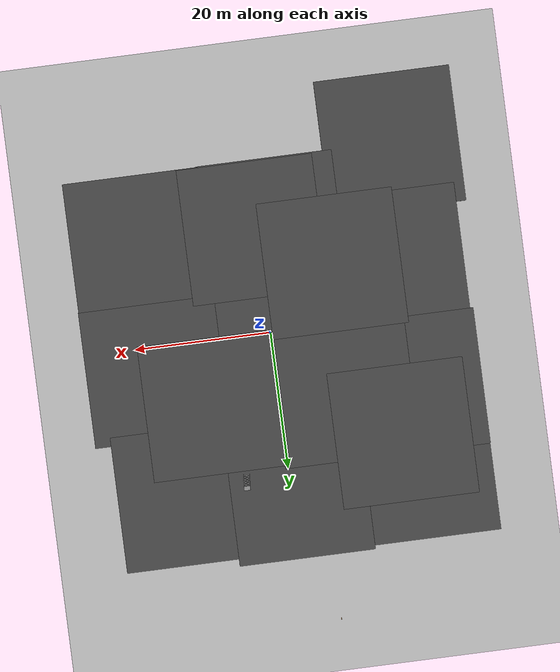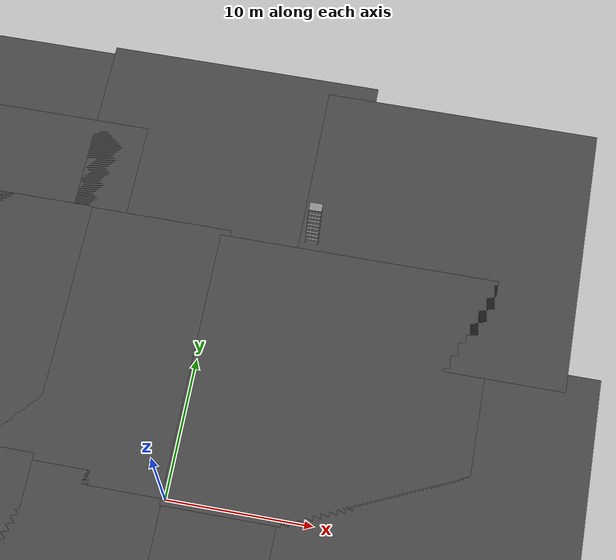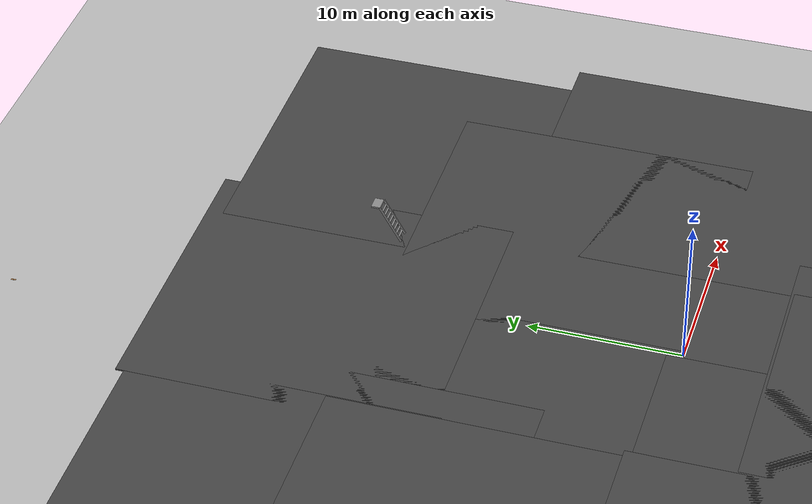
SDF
<sdf version="1.6">
 <world name="default">
  <light name="sun" type="directional">
   <pose>0 0 10 0 -0 0</pose>
   <diffuse>0.8 0.8 0.8 1</diffuse>
   <specular>0.2 0.2 0.2 1</specular>
   <attenuation>
    <range>1000</range>
    <constant>0.9</constant>
    <linear>0.01</linear>
    <quadratic>0.001</quadratic>
   </attenuation>
   <direction>-0.5 0.1 -0.9</direction>
  </light>
  <model name="ground_plane">
   <static>1</static>
   <link name="link">
    <collision name="collision">
     <geometry><plane><normal>0 0 1</normal><size>100 100</size></plane></geometry>
     <surface>
      <contact><collide_bitmask>65535</collide_bitmask></contact>
      <friction><ode><mu>100</mu><mu2>50</mu2></ode></friction>
     </surface>
    </collision>
    <visual name="visual">
     <cast_shadows>0</cast_shadows>
     <geometry><plane><normal>0 0 1</normal><size>100 100</size></plane></geometry>
     <material>
      <script><uri>file://media/materials/scripts/gazebo.material</uri><name>Gazebo/Grey</name></script>
     </material>
    </visual>
   </link>
  </model>
  <gravity>0 0 -9.8</gravity>
  <magnetic_field>6e-06 2.3e-05 -4.2e-05</magnetic_field>
  <atmosphere type="adiabatic"/>
  <physics name="default_physics" default="0" type="ode">
   <max_step_size>0.001</max_step_size>
   <real_time_factor>1</real_time_factor>
   <real_time_update_rate>1000</real_time_update_rate>
  </physics>
  <scene><ambient>0.4 0.4 0.4 1</ambient><background>0.7 0.7 0.7 1</background><shadows>1</shadows></scene>
  <spherical_coordinates>
   <surface_model>EARTH_WGS84</surface_model>
   <latitude_deg>0</latitude_deg>
   <longitude_deg>0</longitude_deg>
   <elevation>0</elevation>
   <heading_deg>0</heading_deg>
  </spherical_coordinates>
  <model name="asphalt_plane">
   <static>1</static>
   <link name="link">
    <collision name="collision"><geometry><box><size>20 20 0.1</size></box></geometry></collision>
    <visual name="visual">
     <cast_shadows>0</cast_shadows>
     <geometry><box><size>20 20 0.1</size></box></geometry>
     <material>
      <script>
       <uri>model://asphalt_plane/materials/scripts</uri>
       <uri>model://asphalt_plane/materials/textures</uri>
       <name>vrc/asphalt</name>
      </script>
     </material>
    </visual>
   </link>
   <pose>-10.2335 -8.95966 0 0 -0 0</pose>
  </model>
  <model name="asphalt_plane_0">
   <static>1</static>
   <link name="link">
    <collision name="collision"><geometry><box><size>20 20 0.1</size></box></geometry></collision>
    <visual name="visual">
     <cast_shadows>0</cast_shadows>
     <geometry><box><size>20 20 0.1</size></box></geometry>
     <material>
      <script>
       <uri>model://asphalt_plane/materials/scripts</uri>
       <uri>model://asphalt_plane/materials/textures</uri>
       <name>vrc/asphalt</name>
      </script>
     </material>
    </visual>
   </link>
   <pose>9.68348 9.56205 0 0 -0 0</pose>
  </model>
  <model name="asphalt_plane_1">
   <static>1</static>
   <link name="link">
    <collision name="collision"><geometry><box><size>20 20 0.1</size></box></geometry></collision>
    <visual name="visual">
     <cast_shadows>0</cast_shadows>
     <geometry><box><size>20 20 0.1</size></box></geometry>
     <material>
      <script>
       <uri>model://asphalt_plane/materials/scripts</uri>
       <uri>model://asphalt_plane/materials/textures</uri>
       <name>vrc/asphalt</name>
      </script>
     </material>
    </visual>
   </link>
   <pose>0.723568 -15.3071 0 0 -0 0</pose>
  </model>
  <model name="asphalt_plane_2">
   <static>1</static>
   <link name="link">
    <collision name="collision"><geometry><box><size>20 20 0.1</size></box></geometry></collision>
    <visual name="visual">
     <cast_shadows>0</cast_shadows>
     <geometry><box><size>20 20 0.1</size></box></geometry>
     <material>
      <script>
       <uri>model://asphalt_plane/materials/scripts</uri>
       <uri>model://asphalt_plane/materials/textures</uri>
       <name>vrc/asphalt</name>
      </script>
     </material>
    </visual>
   </link>
   <pose>-17.3267 16.9851 0 0 -0 0</pose>
  </model>
  <model name="asphalt_plane_0_clone">
   <static>1</static>
   <link name="link">
    <collision name="collision"><geometry><box><size>20 20 0.1</size></box></geometry></collision>
    <visual name="visual">
     <cast_shadows>0</cast_shadows>
     <geometry><box><size>20 20 0.1</size></box></geometry>
     <material>
      <script>
       <uri>model://asphalt_plane/materials/scripts</uri>
       <uri>model://asphalt_plane/materials/textures</uri>
       <name>vrc/asphalt</name>
      </script>
     </material>
    </visual>
   </link>
   <pose>-9.62429 10.0175 0 0 -0 0</pose>
  </model>
  <model name="asphalt_plane_2_clone">
   <static>1</static>
   <link name="link">
    <collision name="collision"><geometry><box><size>20 20 0.1</size></box></geometry></collision>
    <visual name="visual">
     <cast_shadows>0</cast_shadows>
     <geometry><box><size>20 20 0.1</size></box></geometry>
     <material>
      <script>
       <uri>model://asphalt_plane/materials/scripts</uri>
       <uri>model://asphalt_plane/materials/textures</uri>
       <name>vrc/asphalt</name>
      </script>
     </material>
    </visual>
   </link>
   <pose>-19.8492 10.102 0 0 -0 0</pose>
  </model>
  <model name="asphalt_plane_2_clone_0">
   <static>1</static>
   <link name="link">
    <collision name="collision"><geometry><box><size>20 20 0.1</size></box></geometry></collision>
    <visual name="visual">
     <cast_shadows>0</cast_shadows>
     <geometry><box><size>20 20 0.1</size></box></geometry>
     <material>
      <script>
       <uri>model://asphalt_plane/materials/scripts</uri>
       <uri>model://asphalt_plane/materials/textures</uri>
       <name>vrc/asphalt</name>
      </script>
     </material>
    </visual>
   </link>
   <pose>-19.3901 -8.45772 0 0 -0 0</pose>
  </model>
  <model name="asphalt_plane_2_clone_1">
   <static>1</static>
   <link name="link">
    <collision name="collision"><geometry><box><size>20 20 0.1</size></box></geometry></collision>
    <visual name="visual">
     <cast_shadows>0</cast_shadows>
     <geometry><box><size>20 20 0.1</size></box></geometry>
     <material>
      <script>
       <uri>model://asphalt_plane/materials/scripts</uri>
       <uri>model://asphalt_plane/materials/textures</uri>
       <name>vrc/asphalt</name>
      </script>
     </material>
    </visual>
   </link>
   <pose>-1.1834 23.3107 0 0 -0 0</pose>
  </model>
  <model name="asphalt_plane_2_clone_2">
   <static>1</static>
   <link name="link">
    <collision name="collision"><geometry><box><size>20 20 0.1</size></box></geometry></collision>
    <visual name="visual">
     <cast_shadows>0</cast_shadows>
     <geometry><box><size>20 20 0.1</size></box></geometry>
     <material>
      <script>
       <uri>model://asphalt_plane/materials/scripts</uri>
       <uri>model://asphalt_plane/materials/textures</uri>
       <name>vrc/asphalt</name>
      </script>
     </material>
    </visual>
   </link>
   <pose>15.2795 22.2344 0 0 -0 0</pose>
  </model>
  <model name="asphalt_plane_2_clone_3">
   <static>1</static>
   <link name="link">
    <collision name="collision"><geometry><box><size>20 20 0.1</size></box></geometry></collision>
    <visual name="visual">
     <cast_shadows>0</cast_shadows>
     <geometry><box><size>20 20 0.1</size></box></geometry>
     <material>
      <script>
       <uri>model://asphalt_plane/materials/scripts</uri>
       <uri>model://asphalt_plane/materials/textures</uri>
       <name>vrc/asphalt</name>
      </script>
     </material>
    </visual>
   </link>
   <pose>17.5629 3.54139 0 0 -0 0</pose>
  </model>
  <model name="asphalt_plane_2_clone_4">
   <static>1</static>
   <link name="link">
    <collision name="collision"><geometry><box><size>20 20 0.1</size></box></geometry></collision>
    <visual name="visual">
     <cast_shadows>0</cast_shadows>
     <geometry><box><size>20 20 0.1</size></box></geometry>
     <material>
      <script>
       <uri>model://asphalt_plane/materials/scripts</uri>
       <uri>model://asphalt_plane/materials/textures</uri>
       <name>vrc/asphalt</name>
      </script>
     </material>
    </visual>
   </link>
   <pose>17.4862 -15.4052 0 0 -0 0</pose>
  </model>
  <model name="asphalt_plane_1_clone">
   <static>1</static>
   <link name="link">
    <collision name="collision"><geometry><box><size>20 20 0.1</size></box></geometry></collision>
    <visual name="visual">
     <cast_shadows>0</cast_shadows>
     <geometry><box><size>20 20 0.1</size></box></geometry>
     <material>
      <script>
       <uri>model://asphalt_plane/materials/scripts</uri>
       <uri>model://asphalt_plane/materials/textures</uri>
       <name>vrc/asphalt</name>
      </script>
     </material>
    </visual>
   </link>
   <pose>9.02705 -9.99163 0 0 -0 0</pose>
  </model>
  <model name="asphalt_plane_1_clone_0">
   <static>1</static>
   <link name="link">
    <collision name="collision"><geometry><box><size>20 20 0.1</size></box></geometry></collision>
    <visual name="visual">
     <cast_shadows>0</cast_shadows>
     <geometry><box><size>20 20 0.1</size></box></geometry>
     <material>
      <script>
       <uri>model://asphalt_plane/materials/scripts</uri>
       <uri>model://asphalt_plane/materials/textures</uri>
       <name>vrc/asphalt</name>
      </script>
     </material>
    </visual>
   </link>
   <pose>-2.20786 -15.4895 0 0 -0 0</pose>
  </model>
  <model name="asphalt_plane_clone">
   <static>1</static>
   <link name="link">
    <collision name="collision"><geometry><box><size>20 20 0.1</size></box></geometry></collision>
    <visual name="visual">
     <cast_shadows>0</cast_shadows>
     <geometry><box><size>20 20 0.1</size></box></geometry>
     <material>
      <script>
       <uri>model://asphalt_plane/materials/scripts</uri>
       <uri>model://asphalt_plane/materials/textures</uri>
       <name>vrc/asphalt</name>
      </script>
     </material>
    </visual>
   </link>
   <pose>-20.8495 -25.5897 0 0 -0 0</pose>
  </model>
  <model name="asphalt_plane_2_clone_1_clone">
   <static>1</static>
   <link name="link">
    <collision name="collision"><geometry><box><size>20 20 0.1</size></box></geometry></collision>
    <visual name="visual">
     <cast_shadows>0</cast_shadows>
     <geometry><box><size>20 20 0.1</size></box></geometry>
     <material>
      <script>
       <uri>model://asphalt_plane/materials/scripts</uri>
       <uri>model://asphalt_plane/materials/textures</uri>
       <name>vrc/asphalt</name>
      </script>
     </material>
    </visual>
   </link>
   <pose>-19.7761 22.7594 0 0 -0 0</pose>
  </model>
  <model name="ladder_60deg_0rails">
   <static>1</static>
   <link name="step0">
    <pose>0 0.15396 0.266667 0 -0 0</pose>
    <inertial>
     <mass>9.75482</mass>
     <inertia>
      <ixx>0.00957124</ixx>
      <iyy>0.65963</iyy>
      <izz>0.666842</izz>
      <ixy>0</ixy>
      <ixz>0</ixz>
      <iyz>0</iyz>
     </inertia>
    </inertial>
    <collision name="collision"><geometry><box><size>0.9 0.1016 0.0381</size></box></geometry></collision>
    <visual name="visual">
     <geometry><box><size>0.9 0.1016 0.0381</size></box></geometry>
     <material>
      <script><uri>file://media/materials/scripts/gazebo.material</uri><name>Gazebo/Grey</name></script>
     </material>
    </visual>
   </link>
   <link name="step1">
    <pose>0 0.30792 0.533333 0 -0 0</pose>
    <inertial>
     <mass>9.75482</mass>
     <inertia>
      <ixx>0.00957124</ixx>
      <iyy>0.65963</iyy>
      <izz>0.666842</izz>
      <ixy>0</ixy>
      <ixz>0</ixz>
      <iyz>0</iyz>
     </inertia>
    </inertial>
    <collision name="collision"><geometry><box><size>0.9 0.1016 0.0381</size></box></geometry></collision>
    <visual name="visual">
     <geometry><box><size>0.9 0.1016 0.0381</size></box></geometry>
     <material>
      <script><uri>file://media/materials/scripts/gazebo.material</uri><name>Gazebo/Grey</name></script>
     </material>
    </visual>
   </link>
   <link name="step2">
    <pose>0 0.46188 0.8 0 -0 0</pose>
    <inertial>
     <mass>9.75482</mass>
     <inertia>
      <ixx>0.00957124</ixx>
      <iyy>0.65963</iyy>
      <izz>0.666842</izz>
      <ixy>0</ixy>
      <ixz>0</ixz>
      <iyz>0</iyz>
     </inertia>
    </inertial>
    <collision name="collision"><geometry><box><size>0.9 0.1016 0.0381</size></box></geometry></collision>
    <visual name="visual">
     <geometry><box><size>0.9 0.1016 0.0381</size></box></geometry>
     <material>
      <script><uri>file://media/materials/scripts/gazebo.material</uri><name>Gazebo/Grey</name></script>
     </material>
    </visual>
   </link>
   <link name="step3">
    <pose>0 0.61584 1.06667 0 -0 0</pose>
    <inertial>
     <mass>9.75482</mass>
     <inertia>
      <ixx>0.00957124</ixx>
      <iyy>0.65963</iyy>
      <izz>0.666842</izz>
      <ixy>0</ixy>
      <ixz>0</ixz>
      <iyz>0</iyz>
     </inertia>
    </inertial>
    <collision name="collision"><geometry><box><size>0.9 0.1016 0.0381</size></box></geometry></collision>
    <visual name="visual">
     <geometry><box><size>0.9 0.1016 0.0381</size></box></geometry>
     <material>
      <script><uri>file://media/materials/scripts/gazebo.material</uri><name>Gazebo/Grey</name></script>
     </material>
    </visual>
   </link>
   <link name="step4">
    <pose>0 0.7698 1.33333 0 -0 0</pose>
    <inertial>
     <mass>9.75482</mass>
     <inertia>
      <ixx>0.00957124</ixx>
      <iyy>0.65963</iyy>
      <izz>0.666842</izz>
      <ixy>0</ixy>
      <ixz>0</ixz>
      <iyz>0</iyz>
     </inertia>
    </inertial>
    <collision name="collision"><geometry><box><size>0.9 0.1016 0.0381</size></box></geometry></collision>
    <visual name="visual">
     <geometry><box><size>0.9 0.1016 0.0381</size></box></geometry>
     <material>
      <script><uri>file://media/materials/scripts/gazebo.material</uri><name>Gazebo/Grey</name></script>
     </material>
    </visual>
   </link>
   <link name="step5">
    <pose>0 0.92376 1.6 0 -0 0</pose>
    <inertial>
     <mass>9.75482</mass>
     <inertia>
      <ixx>0.00957124</ixx>
      <iyy>0.65963</iyy>
      <izz>0.666842</izz>
      <ixy>0</ixy>
      <ixz>0</ixz>
      <iyz>0</iyz>
     </inertia>
    </inertial>
    <collision name="collision"><geometry><box><size>0.9 0.1016 0.0381</size></box></geometry></collision>
    <visual name="visual">
     <geometry><box><size>0.9 0.1016 0.0381</size></box></geometry>
     <material>
      <script><uri>file://media/materials/scripts/gazebo.material</uri><name>Gazebo/Grey</name></script>
     </material>
    </visual>
   </link>
   <link name="step6">
    <pose>0 1.07772 1.86667 0 -0 0</pose>
    <inertial>
     <mass>9.75482</mass>
     <inertia>
      <ixx>0.00957124</ixx>
      <iyy>0.65963</iyy>
      <izz>0.666842</izz>
      <ixy>0</ixy>
      <ixz>0</ixz>
      <iyz>0</iyz>
     </inertia>
    </inertial>
    <collision name="collision"><geometry><box><size>0.9 0.1016 0.0381</size></box></geometry></collision>
    <visual name="visual">
     <geometry><box><size>0.9 0.1016 0.0381</size></box></geometry>
     <material>
      <script><uri>file://media/materials/scripts/gazebo.material</uri><name>Gazebo/Grey</name></script>
     </material>
    </visual>
   </link>
   <link name="step7">
    <pose>0 1.23168 2.13333 0 -0 0</pose>
    <inertial>
     <mass>9.75482</mass>
     <inertia>
      <ixx>0.00957124</ixx>
      <iyy>0.65963</iyy>
      <izz>0.666842</izz>
      <ixy>0</ixy>
      <ixz>0</ixz>
      <iyz>0</iyz>
     </inertia>
    </inertial>
    <collision name="collision"><geometry><box><size>0.9 0.1016 0.0381</size></box></geometry></collision>
    <visual name="visual">
     <geometry><box><size>0.9 0.1016 0.0381</size></box></geometry>
     <material>
      <script><uri>file://media/materials/scripts/gazebo.material</uri><name>Gazebo/Grey</name></script>
     </material>
    </visual>
   </link>
   <link name="landing">
    <pose>0 1.68564 2.4 0 -0 0</pose>
    <inertial>
     <mass>57.6072</mass>
     <inertia><ixx>1.73518</ixx><iyy>3.89545</iyy><izz>5.6167</izz><ixy>0</ixy><ixz>0</ixz><iyz>0</iyz></inertia>
    </inertial>
    <collision name="collision"><geometry><box><size>0.9 0.6 0.1016</size></box></geometry></collision>
    <visual name="visual">
     <geometry><box><size>0.9 0.6 0.1016</size></box></geometry>
     <material>
      <script><uri>file://media/materials/scripts/gazebo.material</uri><name>Gazebo/Grey</name></script>
     </material>
    </visual>
   </link>
   <link name="left_side_wall">
    <pose>-0.45 0.69282 1.2 1.0472 -0 0</pose>
    <collision name="collision"><geometry><box><size>0.0508 2.85128 0.13</size></box></geometry></collision>
    <visual name="visual">
     <geometry><box><size>0.0508 2.85128 0.13</size></box></geometry>
     <material>
      <script><uri>file://media/materials/scripts/gazebo.material</uri><name>Gazebo/Grey</name></script>
     </material>
    </visual>
   </link>
   <link name="right_side_wall">
    <pose>0.45 0.69282 1.2 1.0472 -0 0</pose>
    <collision name="collision"><geometry><box><size>0.0508 2.85128 0.13</size></box></geometry></collision>
    <visual name="visual">
     <geometry><box><size>0.0508 2.85128 0.13</size></box></geometry>
     <material>
      <script><uri>file://media/materials/scripts/gazebo.material</uri><name>Gazebo/Grey</name></script>
     </material>
    </visual>
   </link>
   <pose>6.17944 20.0844 0.116524 0 -0 0</pose>
  </model>
  <model name="wooden_peg_board">
   <link name="wooden_board::base">
    <pose>0 0 0.00523 0 -0 0</pose>
    <inertial>
     <mass>0.2765</mass>
     <inertia>
      <ixx>0.0025148</ixx>
      <ixy>0</ixy>
      <ixz>0</ixz>
      <iyy>0.00024037</iyy>
      <iyz>0</iyz>
      <izz>0.00275013</izz>
     </inertia>
    </inertial>
    <collision name="collision">
     <geometry><box><size>0.1016 0.3302 0.01046</size></box></geometry>
     <surface>
      <contact>
       <poissons_ratio>0.347</poissons_ratio>
       <elastic_modulus>8.8e+09</elastic_modulus>
       <ode><kp>100000</kp><kd>100</kd><max_vel>100</max_vel><min_depth>0.001</min_depth></ode>
      </contact>
      <friction>
       <torsional>
        <coefficient>1</coefficient>
        <use_patch_radius>0</use_patch_radius>
        <surface_radius>0.01</surface_radius>
       </torsional>
      </friction>
     </surface>
    </collision>
    <visual name="visual">
     <geometry><box><size>0.1016 0.3302 0.01046</size></box></geometry>
     <material>
      <script><uri>file://media/materials/scripts/gazebo.material</uri><name>Gazebo/Wood</name></script>
     </material>
    </visual>
    <visual name="tee_nut_1">
     <pose>0 -0.116 0 0 -0 0</pose>
     <geometry><cylinder><radius>0.00635</radius><length>0.0105646</length></cylinder></geometry>
     <material>
      <script><uri>file://media/materials/scripts/gazebo.material</uri><name>Gazebo/Grey</name></script>
     </material>
    </visual>
    <visual name="tee_nut_2">
     <pose>0 -0.038 0 0 -0 0</pose>
     <geometry><cylinder><radius>0.00635</radius><length>0.0105646</length></cylinder></geometry>
     <material>
      <script><uri>file://media/materials/scripts/gazebo.material</uri><name>Gazebo/Grey</name></script>
     </material>
    </visual>
    <visual name="tee_nut_3">
     <pose>0 0.038 0 0 -0 0</pose>
     <geometry><cylinder><radius>0.00635</radius><length>0.0105646</length></cylinder></geometry>
     <material>
      <script><uri>file://media/materials/scripts/gazebo.material</uri><name>Gazebo/Grey</name></script>
     </material>
    </visual>
    <visual name="tee_nut_4">
     <pose>0 0.116 0 0 -0 0</pose>
     <geometry><cylinder><radius>0.00635</radius><length>0.0105646</length></cylinder></geometry>
     <material>
      <script><uri>file://media/materials/scripts/gazebo.material</uri><name>Gazebo/Grey</name></script>
     </material>
    </visual>
   </link>
   <link name="peg::link">
    <pose>0 0.116 0.04 0 -0 0</pose>
    <inertial>
     <mass>0.0175</mass>
     <inertia>
      <ixx>9.74923e-06</ixx>
      <ixy>0</ixy>
      <ixz>0</ixz>
      <iyy>9.74923e-06</iyy>
      <iyz>0</iyz>
      <izz>8.31797e-07</izz>
     </inertia>
    </inertial>
    <collision name="collision">
     <geometry><cylinder><radius>0.00975</radius><length>0.08</length></cylinder></geometry>
     <surface>
      <contact>
       <poissons_ratio>0.347</poissons_ratio>
       <elastic_modulus>8.8e+09</elastic_modulus>
       <ode><kp>100000</kp><kd>100</kd><max_vel>100</max_vel><min_depth>0.001</min_depth></ode>
      </contact>
      <friction>
       <torsional>
        <coefficient>1</coefficient>
        <use_patch_radius>0</use_patch_radius>
        <surface_radius>0.01</surface_radius>
       </torsional>
      </friction>
     </surface>
    </collision>
    <visual name="visual">
     <geometry><cylinder><radius>0.00975</radius><length>0.08</length></cylinder></geometry>
     <material>
      <script><uri>file://media/materials/scripts/gazebo.material</uri><name>Gazebo/Wood</name></script>
     </material>
    </visual>
   </link>
   <joint name="board_peg" type="revolute">
    <parent>wooden_board::base</parent>
    <child>peg::link</child>
    <axis>
     <xyz>0 0 1</xyz>
     <limit><upper>0</upper><lower>0</lower></limit>
     <use_parent_model_frame>0</use_parent_model_frame>
     <dynamics><spring_reference>0</spring_reference><spring_stiffness>0</spring_stiffness></dynamics>
    </axis>
   </joint>
   <pose>-4.94594 42.7742 0 0 -0 0</pose>
  </model>
 </world>
 <plugin name="ros_interface_plugin" filename="librotors_gazebo_ros_interface_plugin.so"/>
</sdf>
